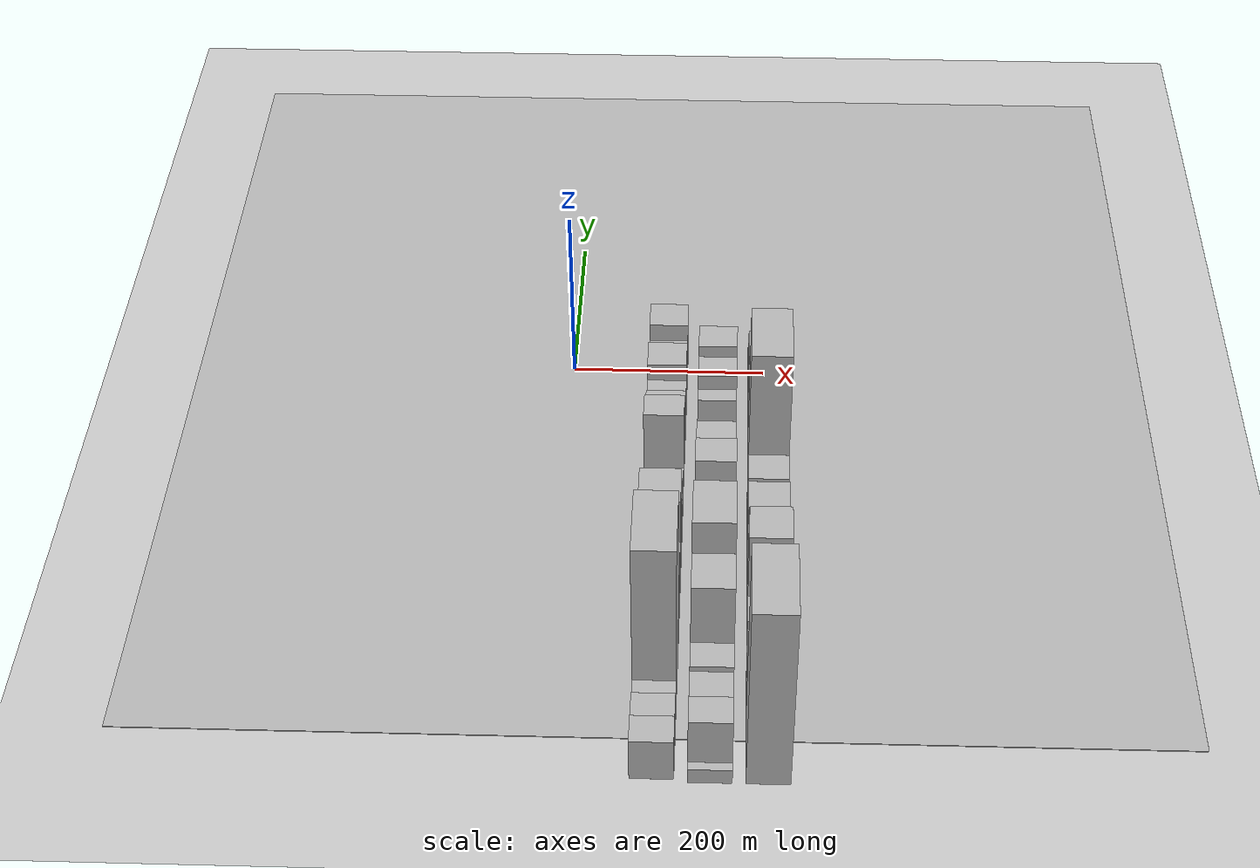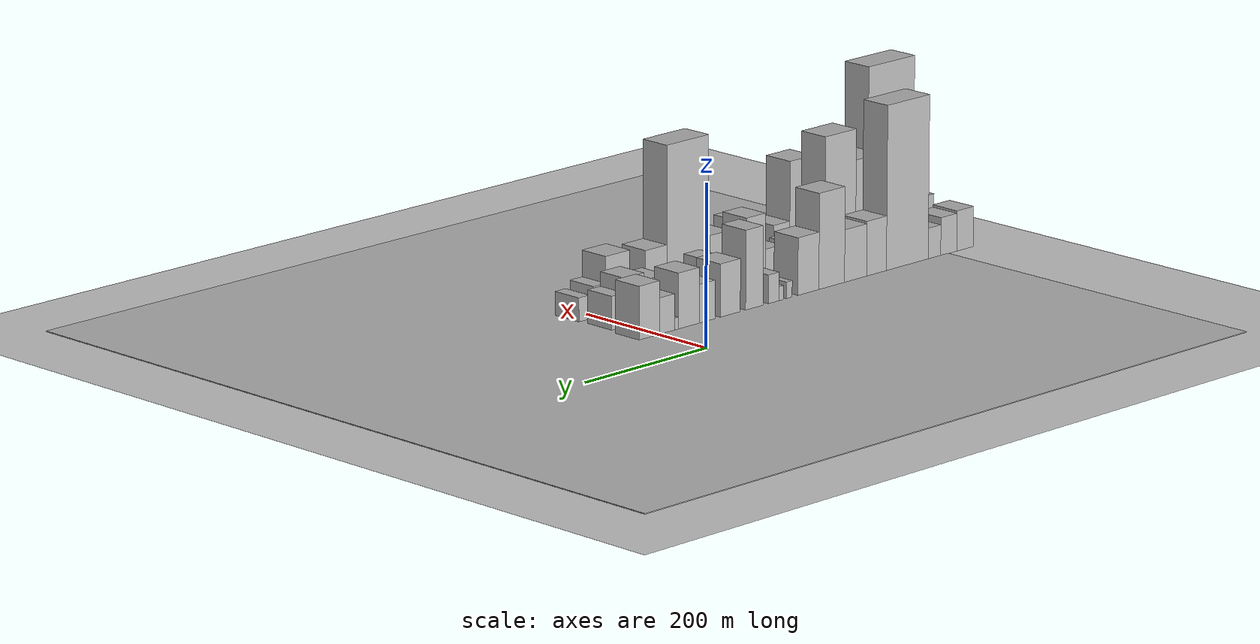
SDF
<sdf version="1.6">
 <world name="default">
  <include><name>ground_plane_1</name><uri>model://HANNAS_ground_plane</uri></include>
  <include>
   <name>ground_plane_2</name>
   <uri>model://HANNAS_ground_plane</uri>
   <pose>100 0 0  0 0 0</pose>
  </include>
  <model name="building_1">
   <static>1</static>
   <pose>100.0000 -530.0485 0 0.000000 0.000000 0.000000</pose>
   <link name="link">
    <pose>0 0 25.50 0 0 0</pose>
    <collision name="collision"><geometry><box><size>40.0000 29.9029 51.0000</size></box></geometry></collision>
    <visual name="visual">
     <cast_shadows>0</cast_shadows>
     <geometry><box><size>40.0000 29.9029 51.0000</size></box></geometry>
     <material>
      <script>
       <uri>model://HANNAS_wall/materials/scripts</uri>
       <uri>model://HANNAS_wall/materials/textures</uri>
       <name>vrc/HANNAS_wall</name>
      </script>
     </material>
    </visual>
   </link>
  </model>
  <model name="building_2">
   <static>1</static>
   <pose>100.0000 -500.7562 0 0.000000 0.000000 0.000000</pose>
   <link name="link">
    <pose>0 0 24.00 0 0 0</pose>
    <collision name="collision"><geometry><box><size>40.0000 28.6818 48.0000</size></box></geometry></collision>
    <visual name="visual">
     <cast_shadows>0</cast_shadows>
     <geometry><box><size>40.0000 28.6818 48.0000</size></box></geometry>
     <material>
      <script>
       <uri>model://HANNAS_wall/materials/scripts</uri>
       <uri>model://HANNAS_wall/materials/textures</uri>
       <name>vrc/HANNAS_wall</name>
      </script>
     </material>
    </visual>
   </link>
  </model>
  <model name="building_3">
   <static>1</static>
   <pose>100.0000 -475.2636 0 0.000000 0.000000 0.000000</pose>
   <link name="link">
    <pose>0 0 19.50 0 0 0</pose>
    <collision name="collision"><geometry><box><size>40.0000 22.3033 39.0000</size></box></geometry></collision>
    <visual name="visual">
     <cast_shadows>0</cast_shadows>
     <geometry><box><size>40.0000 22.3033 39.0000</size></box></geometry>
     <material>
      <script>
       <uri>model://HANNAS_wall/materials/scripts</uri>
       <uri>model://HANNAS_wall/materials/textures</uri>
       <name>vrc/HANNAS_wall</name>
      </script>
     </material>
    </visual>
   </link>
  </model>
  <model name="building_4">
   <static>1</static>
   <pose>100.0000 -427.1443 0 0.000000 0.000000 0.000000</pose>
   <link name="link">
    <pose>0 0 103.50 0 0 0</pose>
    <collision name="collision"><geometry><box><size>40.0000 73.9355 207.0000</size></box></geometry></collision>
    <visual name="visual">
     <cast_shadows>0</cast_shadows>
     <geometry><box><size>40.0000 73.9355 207.0000</size></box></geometry>
     <material>
      <script>
       <uri>model://HANNAS_wall/materials/scripts</uri>
       <uri>model://HANNAS_wall/materials/textures</uri>
       <name>vrc/HANNAS_wall</name>
      </script>
     </material>
    </visual>
   </link>
  </model>
  <model name="building_5">
   <static>1</static>
   <pose>100.0000 -372.8234 0 0.000000 0.000000 0.000000</pose>
   <link name="link">
    <pose>0 0 34.50 0 0 0</pose>
    <collision name="collision"><geometry><box><size>40.0000 34.7063 69.0000</size></box></geometry></collision>
    <visual name="visual">
     <cast_shadows>0</cast_shadows>
     <geometry><box><size>40.0000 34.7063 69.0000</size></box></geometry>
     <material>
      <script>
       <uri>model://HANNAS_wall/materials/scripts</uri>
       <uri>model://HANNAS_wall/materials/textures</uri>
       <name>vrc/HANNAS_wall</name>
      </script>
     </material>
    </visual>
   </link>
  </model>
  <model name="building_6">
   <static>1</static>
   <pose>100.0000 -336.1685 0 0.000000 0.000000 0.000000</pose>
   <link name="link">
    <pose>0 0 33.00 0 0 0</pose>
    <collision name="collision"><geometry><box><size>40.0000 38.6033 66.0000</size></box></geometry></collision>
    <visual name="visual">
     <cast_shadows>0</cast_shadows>
     <geometry><box><size>40.0000 38.6033 66.0000</size></box></geometry>
     <material>
      <script>
       <uri>model://HANNAS_wall/materials/scripts</uri>
       <uri>model://HANNAS_wall/materials/textures</uri>
       <name>vrc/HANNAS_wall</name>
      </script>
     </material>
    </visual>
   </link>
  </model>
  <model name="building_7">
   <static>1</static>
   <pose>100.0000 -294.6221 0 0.000000 0.000000 0.000000</pose>
   <link name="link">
    <pose>0 0 60.00 0 0 0</pose>
    <collision name="collision"><geometry><box><size>40.0000 44.4894 120.0000</size></box></geometry></collision>
    <visual name="visual">
     <cast_shadows>0</cast_shadows>
     <geometry><box><size>40.0000 44.4894 120.0000</size></box></geometry>
     <material>
      <script>
       <uri>model://HANNAS_wall/materials/scripts</uri>
       <uri>model://HANNAS_wall/materials/textures</uri>
       <name>vrc/HANNAS_wall</name>
      </script>
     </material>
    </visual>
   </link>
  </model>
  <model name="building_8">
   <static>1</static>
   <pose>100.0000 -254.2661 0 0.000000 0.000000 0.000000</pose>
   <link name="link">
    <pose>0 0 36.00 0 0 0</pose>
    <collision name="collision"><geometry><box><size>40.0000 36.2226 72.0000</size></box></geometry></collision>
    <visual name="visual">
     <cast_shadows>0</cast_shadows>
     <geometry><box><size>40.0000 36.2226 72.0000</size></box></geometry>
     <material>
      <script>
       <uri>model://HANNAS_wall/materials/scripts</uri>
       <uri>model://HANNAS_wall/materials/textures</uri>
       <name>vrc/HANNAS_wall</name>
      </script>
     </material>
    </visual>
   </link>
  </model>
  <model name="building_9">
   <static>1</static>
   <pose>100.0000 -221.3001 0 0.000000 0.000000 0.000000</pose>
   <link name="link">
    <pose>0 0 10.50 0 0 0</pose>
    <collision name="collision"><geometry><box><size>40.0000 9.7096 21.0000</size></box></geometry></collision>
    <visual name="visual">
     <cast_shadows>0</cast_shadows>
     <geometry><box><size>40.0000 9.7096 21.0000</size></box></geometry>
     <material>
      <script>
       <uri>model://HANNAS_wall/materials/scripts</uri>
       <uri>model://HANNAS_wall/materials/textures</uri>
       <name>vrc/HANNAS_wall</name>
      </script>
     </material>
    </visual>
   </link>
  </model>
  <model name="building_10">
   <static>1</static>
   <pose>100.0000 -207.6392 0 0.000000 0.000000 0.000000</pose>
   <link name="link">
    <pose>0 0 9.00 0 0 0</pose>
    <collision name="collision"><geometry><box><size>40.0000 7.6121 18.0000</size></box></geometry></collision>
    <visual name="visual">
     <cast_shadows>0</cast_shadows>
     <geometry><box><size>40.0000 7.6121 18.0000</size></box></geometry>
     <material>
      <script>
       <uri>model://HANNAS_wall/materials/scripts</uri>
       <uri>model://HANNAS_wall/materials/textures</uri>
       <name>vrc/HANNAS_wall</name>
      </script>
     </material>
    </visual>
   </link>
  </model>
  <model name="building_11">
   <static>1</static>
   <pose>100.0000 -194.6576 0 0.000000 0.000000 0.000000</pose>
   <link name="link">
    <pose>0 0 18.00 0 0 0</pose>
    <collision name="collision"><geometry><box><size>40.0000 18.3511 36.0000</size></box></geometry></collision>
    <visual name="visual">
     <cast_shadows>0</cast_shadows>
     <geometry><box><size>40.0000 18.3511 36.0000</size></box></geometry>
     <material>
      <script>
       <uri>model://HANNAS_wall/materials/scripts</uri>
       <uri>model://HANNAS_wall/materials/textures</uri>
       <name>vrc/HANNAS_wall</name>
      </script>
     </material>
    </visual>
   </link>
  </model>
  <model name="building_12">
   <static>1</static>
   <pose>100.0000 -161.5539 0 0.000000 0.000000 0.000000</pose>
   <link name="link">
    <pose>0 0 49.50 0 0 0</pose>
    <collision name="collision"><geometry><box><size>40.0000 29.8562 99.0000</size></box></geometry></collision>
    <visual name="visual">
     <cast_shadows>0</cast_shadows>
     <geometry><box><size>40.0000 29.8562 99.0000</size></box></geometry>
     <material>
      <script>
       <uri>model://HANNAS_wall/materials/scripts</uri>
       <uri>model://HANNAS_wall/materials/textures</uri>
       <name>vrc/HANNAS_wall</name>
      </script>
     </material>
    </visual>
   </link>
  </model>
  <model name="building_13">
   <static>1</static>
   <pose>100.0000 -120.6561 0 0.000000 0.000000 0.000000</pose>
   <link name="link">
    <pose>0 0 33.00 0 0 0</pose>
    <collision name="collision"><geometry><box><size>40.0000 33.9394 66.0000</size></box></geometry></collision>
    <visual name="visual">
     <cast_shadows>0</cast_shadows>
     <geometry><box><size>40.0000 33.9394 66.0000</size></box></geometry>
     <material>
      <script>
       <uri>model://HANNAS_wall/materials/scripts</uri>
       <uri>model://HANNAS_wall/materials/textures</uri>
       <name>vrc/HANNAS_wall</name>
      </script>
     </material>
    </visual>
   </link>
  </model>
  <model name="building_14">
   <static>1</static>
   <pose>100.0000 -81.5072 0 0.000000 0.000000 0.000000</pose>
   <link name="link">
    <pose>0 0 24.00 0 0 0</pose>
    <collision name="collision"><geometry><box><size>40.0000 26.3584 48.0000</size></box></geometry></collision>
    <visual name="visual">
     <cast_shadows>0</cast_shadows>
     <geometry><box><size>40.0000 26.3584 48.0000</size></box></geometry>
     <material>
      <script>
       <uri>model://HANNAS_wall/materials/scripts</uri>
       <uri>model://HANNAS_wall/materials/textures</uri>
       <name>vrc/HANNAS_wall</name>
      </script>
     </material>
    </visual>
   </link>
  </model>
  <model name="building_15">
   <static>1</static>
   <pose>100.0000 -50.8605 0 0.000000 0.000000 0.000000</pose>
   <link name="link">
    <pose>0 0 34.50 0 0 0</pose>
    <collision name="collision"><geometry><box><size>40.0000 34.9350 69.0000</size></box></geometry></collision>
    <visual name="visual">
     <cast_shadows>0</cast_shadows>
     <geometry><box><size>40.0000 34.9350 69.0000</size></box></geometry>
     <material>
      <script>
       <uri>model://HANNAS_wall/materials/scripts</uri>
       <uri>model://HANNAS_wall/materials/textures</uri>
       <name>vrc/HANNAS_wall</name>
      </script>
     </material>
    </visual>
   </link>
  </model>
  <model name="building_16">
   <static>1</static>
   <pose>100.0000 -30.2823 0 0.000000 0.000000 0.000000</pose>
   <link name="link">
    <pose>0 0 7.50 0 0 0</pose>
    <collision name="collision"><geometry><box><size>40.0000 6.2215 15.0000</size></box></geometry></collision>
    <visual name="visual">
     <cast_shadows>0</cast_shadows>
     <geometry><box><size>40.0000 6.2215 15.0000</size></box></geometry>
     <material>
      <script>
       <uri>model://HANNAS_wall/materials/scripts</uri>
       <uri>model://HANNAS_wall/materials/textures</uri>
       <name>vrc/HANNAS_wall</name>
      </script>
     </material>
    </visual>
   </link>
  </model>
  <model name="building_17">
   <static>1</static>
   <pose>100.0000 -14.8061 0 0.000000 0.000000 0.000000</pose>
   <link name="link">
    <pose>0 0 22.50 0 0 0</pose>
    <collision name="collision"><geometry><box><size>40.0000 24.7308 45.0000</size></box></geometry></collision>
    <visual name="visual">
     <cast_shadows>0</cast_shadows>
     <geometry><box><size>40.0000 24.7308 45.0000</size></box></geometry>
     <material>
      <script>
       <uri>model://HANNAS_wall/materials/scripts</uri>
       <uri>model://HANNAS_wall/materials/textures</uri>
       <name>vrc/HANNAS_wall</name>
      </script>
     </material>
    </visual>
   </link>
  </model>
  <model name="building_18">
   <static>1</static>
   <pose>100.0000 14.7597 0 0.000000 0.000000 0.000000</pose>
   <link name="link">
    <pose>0 0 33.00 0 0 0</pose>
    <collision name="collision"><geometry><box><size>40.0000 34.4009 66.0000</size></box></geometry></collision>
    <visual name="visual">
     <cast_shadows>0</cast_shadows>
     <geometry><box><size>40.0000 34.4009 66.0000</size></box></geometry>
     <material>
      <script>
       <uri>model://HANNAS_wall/materials/scripts</uri>
       <uri>model://HANNAS_wall/materials/textures</uri>
       <name>vrc/HANNAS_wall</name>
      </script>
     </material>
    </visual>
   </link>
  </model>
  <model name="building_36">
   <static>1</static>
   <pose>152.0000 -543.7004 0 0.000000 0.000000 0.000000</pose>
   <link name="link">
    <pose>0 0 9.00 0 0 0</pose>
    <collision name="collision"><geometry><box><size>40.0000 8.5993 18.0000</size></box></geometry></collision>
    <visual name="visual">
     <cast_shadows>0</cast_shadows>
     <geometry><box><size>40.0000 8.5993 18.0000</size></box></geometry>
     <material>
      <script>
       <uri>model://HANNAS_wall/materials/scripts</uri>
       <uri>model://HANNAS_wall/materials/textures</uri>
       <name>vrc/HANNAS_wall</name>
      </script>
     </material>
    </visual>
   </link>
  </model>
  <model name="building_37">
   <static>1</static>
   <pose>152.0000 -514.3517 0 0.000000 0.000000 0.000000</pose>
   <link name="link">
    <pose>0 0 30.00 0 0 0</pose>
    <collision name="collision"><geometry><box><size>40.0000 30.0981 60.0000</size></box></geometry></collision>
    <visual name="visual">
     <cast_shadows>0</cast_shadows>
     <geometry><box><size>40.0000 30.0981 60.0000</size></box></geometry>
     <material>
      <script>
       <uri>model://HANNAS_wall/materials/scripts</uri>
       <uri>model://HANNAS_wall/materials/textures</uri>
       <name>vrc/HANNAS_wall</name>
      </script>
     </material>
    </visual>
   </link>
  </model>
  <model name="building_38">
   <static>1</static>
   <pose>152.0000 -479.7937 0 0.000000 0.000000 0.000000</pose>
   <link name="link">
    <pose>0 0 27.00 0 0 0</pose>
    <collision name="collision"><geometry><box><size>40.0000 29.0178 54.0000</size></box></geometry></collision>
    <visual name="visual">
     <cast_shadows>0</cast_shadows>
     <geometry><box><size>40.0000 29.0178 54.0000</size></box></geometry>
     <material>
      <script>
       <uri>model://HANNAS_wall/materials/scripts</uri>
       <uri>model://HANNAS_wall/materials/textures</uri>
       <name>vrc/HANNAS_wall</name>
      </script>
     </material>
    </visual>
   </link>
  </model>
  <model name="building_39">
   <static>1</static>
   <pose>152.0000 -447.8820 0 0.000000 0.000000 0.000000</pose>
   <link name="link">
    <pose>0 0 28.50 0 0 0</pose>
    <collision name="collision"><geometry><box><size>40.0000 28.8056 57.0000</size></box></geometry></collision>
    <visual name="visual">
     <cast_shadows>0</cast_shadows>
     <geometry><box><size>40.0000 28.8056 57.0000</size></box></geometry>
     <material>
      <script>
       <uri>model://HANNAS_wall/materials/scripts</uri>
       <uri>model://HANNAS_wall/materials/textures</uri>
       <name>vrc/HANNAS_wall</name>
      </script>
     </material>
    </visual>
   </link>
  </model>
  <model name="building_40">
   <static>1</static>
   <pose>152.0000 -411.9997 0 0.000000 0.000000 0.000000</pose>
   <link name="link">
    <pose>0 0 64.50 0 0 0</pose>
    <collision name="collision"><geometry><box><size>40.0000 42.9589 129.0000</size></box></geometry></collision>
    <visual name="visual">
     <cast_shadows>0</cast_shadows>
     <geometry><box><size>40.0000 42.9589 129.0000</size></box></geometry>
     <material>
      <script>
       <uri>model://HANNAS_wall/materials/scripts</uri>
       <uri>model://HANNAS_wall/materials/textures</uri>
       <name>vrc/HANNAS_wall</name>
      </script>
     </material>
    </visual>
   </link>
  </model>
  <model name="building_41">
   <static>1</static>
   <pose>152.0000 -363.5714 0 0.000000 0.000000 0.000000</pose>
   <link name="link">
    <pose>0 0 84.00 0 0 0</pose>
    <collision name="collision"><geometry><box><size>40.0000 53.8978 168.0000</size></box></geometry></collision>
    <visual name="visual">
     <cast_shadows>0</cast_shadows>
     <geometry><box><size>40.0000 53.8978 168.0000</size></box></geometry>
     <material>
      <script>
       <uri>model://HANNAS_wall/materials/scripts</uri>
       <uri>model://HANNAS_wall/materials/textures</uri>
       <name>vrc/HANNAS_wall</name>
      </script>
     </material>
    </visual>
   </link>
  </model>
  <model name="building_42">
   <static>1</static>
   <pose>152.0000 -315.9194 0 0.000000 0.000000 0.000000</pose>
   <link name="link">
    <pose>0 0 18.00 0 0 0</pose>
    <collision name="collision"><geometry><box><size>40.0000 21.4063 36.0000</size></box></geometry></collision>
    <visual name="visual">
     <cast_shadows>0</cast_shadows>
     <geometry><box><size>40.0000 21.4063 36.0000</size></box></geometry>
     <material>
      <script>
       <uri>model://HANNAS_wall/materials/scripts</uri>
       <uri>model://HANNAS_wall/materials/textures</uri>
       <name>vrc/HANNAS_wall</name>
      </script>
     </material>
    </visual>
   </link>
  </model>
  <model name="building_43">
   <static>1</static>
   <pose>152.0000 -293.4636 0 0.000000 0.000000 0.000000</pose>
   <link name="link">
    <pose>0 0 22.50 0 0 0</pose>
    <collision name="collision"><geometry><box><size>40.0000 23.5053 45.0000</size></box></geometry></collision>
    <visual name="visual">
     <cast_shadows>0</cast_shadows>
     <geometry><box><size>40.0000 23.5053 45.0000</size></box></geometry>
     <material>
      <script>
       <uri>model://HANNAS_wall/materials/scripts</uri>
       <uri>model://HANNAS_wall/materials/textures</uri>
       <name>vrc/HANNAS_wall</name>
      </script>
     </material>
    </visual>
   </link>
  </model>
  <model name="building_44">
   <static>1</static>
   <pose>152.0000 -278.1289 0 0.000000 0.000000 0.000000</pose>
   <link name="link">
    <pose>0 0 7.50 0 0 0</pose>
    <collision name="collision"><geometry><box><size>40.0000 7.1641 15.0000</size></box></geometry></collision>
    <visual name="visual">
     <cast_shadows>0</cast_shadows>
     <geometry><box><size>40.0000 7.1641 15.0000</size></box></geometry>
     <material>
      <script>
       <uri>model://HANNAS_wall/materials/scripts</uri>
       <uri>model://HANNAS_wall/materials/textures</uri>
       <name>vrc/HANNAS_wall</name>
      </script>
     </material>
    </visual>
   </link>
  </model>
  <model name="building_45">
   <static>1</static>
   <pose>152.0000 -268.0411 0 0.000000 0.000000 0.000000</pose>
   <link name="link">
    <pose>0 0 13.50 0 0 0</pose>
    <collision name="collision"><geometry><box><size>40.0000 13.0114 27.0000</size></box></geometry></collision>
    <visual name="visual">
     <cast_shadows>0</cast_shadows>
     <geometry><box><size>40.0000 13.0114 27.0000</size></box></geometry>
     <material>
      <script>
       <uri>model://HANNAS_wall/materials/scripts</uri>
       <uri>model://HANNAS_wall/materials/textures</uri>
       <name>vrc/HANNAS_wall</name>
      </script>
     </material>
    </visual>
   </link>
  </model>
  <model name="building_46">
   <static>1</static>
   <pose>152.0000 -247.6543 0 0.000000 0.000000 0.000000</pose>
   <link name="link">
    <pose>0 0 24.00 0 0 0</pose>
    <collision name="collision"><geometry><box><size>40.0000 27.7624 48.0000</size></box></geometry></collision>
    <visual name="visual">
     <cast_shadows>0</cast_shadows>
     <geometry><box><size>40.0000 27.7624 48.0000</size></box></geometry>
     <material>
      <script>
       <uri>model://HANNAS_wall/materials/scripts</uri>
       <uri>model://HANNAS_wall/materials/textures</uri>
       <name>vrc/HANNAS_wall</name>
      </script>
     </material>
    </visual>
   </link>
  </model>
  <model name="building_47">
   <static>1</static>
   <pose>152.0000 -217.5060 0 0.000000 0.000000 0.000000</pose>
   <link name="link">
    <pose>0 0 46.50 0 0 0</pose>
    <collision name="collision"><geometry><box><size>40.0000 32.5342 93.0000</size></box></geometry></collision>
    <visual name="visual">
     <cast_shadows>0</cast_shadows>
     <geometry><box><size>40.0000 32.5342 93.0000</size></box></geometry>
     <material>
      <script>
       <uri>model://HANNAS_wall/materials/scripts</uri>
       <uri>model://HANNAS_wall/materials/textures</uri>
       <name>vrc/HANNAS_wall</name>
      </script>
     </material>
    </visual>
   </link>
  </model>
  <model name="building_48">
   <static>1</static>
   <pose>152.0000 -191.4395 0 0.000000 0.000000 0.000000</pose>
   <link name="link">
    <pose>0 0 16.50 0 0 0</pose>
    <collision name="collision"><geometry><box><size>40.0000 19.5988 33.0000</size></box></geometry></collision>
    <visual name="visual">
     <cast_shadows>0</cast_shadows>
     <geometry><box><size>40.0000 19.5988 33.0000</size></box></geometry>
     <material>
      <script>
       <uri>model://HANNAS_wall/materials/scripts</uri>
       <uri>model://HANNAS_wall/materials/textures</uri>
       <name>vrc/HANNAS_wall</name>
      </script>
     </material>
    </visual>
   </link>
  </model>
  <model name="building_49">
   <static>1</static>
   <pose>152.0000 -171.7727 0 0.000000 0.000000 0.000000</pose>
   <link name="link">
    <pose>0 0 18.00 0 0 0</pose>
    <collision name="collision"><geometry><box><size>40.0000 19.7348 36.0000</size></box></geometry></collision>
    <visual name="visual">
     <cast_shadows>0</cast_shadows>
     <geometry><box><size>40.0000 19.7348 36.0000</size></box></geometry>
     <material>
      <script>
       <uri>model://HANNAS_wall/materials/scripts</uri>
       <uri>model://HANNAS_wall/materials/textures</uri>
       <name>vrc/HANNAS_wall</name>
      </script>
     </material>
    </visual>
   </link>
  </model>
  <model name="building_50">
   <static>1</static>
   <pose>152.0000 -148.2957 0 0.000000 0.000000 0.000000</pose>
   <link name="link">
    <pose>0 0 27.00 0 0 0</pose>
    <collision name="collision"><geometry><box><size>40.0000 27.2191 54.0000</size></box></geometry></collision>
    <visual name="visual">
     <cast_shadows>0</cast_shadows>
     <geometry><box><size>40.0000 27.2191 54.0000</size></box></geometry>
     <material>
      <script>
       <uri>model://HANNAS_wall/materials/scripts</uri>
       <uri>model://HANNAS_wall/materials/textures</uri>
       <name>vrc/HANNAS_wall</name>
      </script>
     </material>
    </visual>
   </link>
  </model>
  <model name="building_51">
   <static>1</static>
   <pose>152.0000 -72.7577 0 0.000000 0.000000 0.000000</pose>
   <link name="link">
    <pose>0 0 16.50 0 0 0</pose>
    <collision name="collision"><geometry><box><size>40.0000 17.2856 33.0000</size></box></geometry></collision>
    <visual name="visual">
     <cast_shadows>0</cast_shadows>
     <geometry><box><size>40.0000 17.2856 33.0000</size></box></geometry>
     <material>
      <script>
       <uri>model://HANNAS_wall/materials/scripts</uri>
       <uri>model://HANNAS_wall/materials/textures</uri>
       <name>vrc/HANNAS_wall</name>
      </script>
     </material>
    </visual>
   </link>
  </model>
  <model name="building_52">
   <static>1</static>
   <pose>152.0000 -48.9809 0 0.000000 0.000000 0.000000</pose>
   <link name="link">
    <pose>0 0 25.50 0 0 0</pose>
    <collision name="collision"><geometry><box><size>40.0000 30.2680 51.0000</size></box></geometry></collision>
    <visual name="visual">
     <cast_shadows>0</cast_shadows>
     <geometry><box><size>40.0000 30.2680 51.0000</size></box></geometry>
     <material>
      <script>
       <uri>model://HANNAS_wall/materials/scripts</uri>
       <uri>model://HANNAS_wall/materials/textures</uri>
       <name>vrc/HANNAS_wall</name>
      </script>
     </material>
    </visual>
   </link>
  </model>
  <model name="building_53">
   <static>1</static>
   <pose>152.0000 -11.5261 0 0.000000 0.000000 0.000000</pose>
   <link name="link">
    <pose>0 0 30.00 0 0 0</pose>
    <collision name="collision"><geometry><box><size>40.0000 32.6414 60.0000</size></box></geometry></collision>
    <visual name="visual">
     <cast_shadows>0</cast_shadows>
     <geometry><box><size>40.0000 32.6414 60.0000</size></box></geometry>
     <material>
      <script>
       <uri>model://HANNAS_wall/materials/scripts</uri>
       <uri>model://HANNAS_wall/materials/textures</uri>
       <name>vrc/HANNAS_wall</name>
      </script>
     </material>
    </visual>
   </link>
  </model>
  <model name="building_54">
   <static>1</static>
   <pose>152.0000 15.3104 0 0.000000 0.000000 0.000000</pose>
   <link name="link">
    <pose>0 0 21.00 0 0 0</pose>
    <collision name="collision"><geometry><box><size>40.0000 21.0316 42.0000</size></box></geometry></collision>
    <visual name="visual">
     <cast_shadows>0</cast_shadows>
     <geometry><box><size>40.0000 21.0316 42.0000</size></box></geometry>
     <material>
      <script>
       <uri>model://HANNAS_wall/materials/scripts</uri>
       <uri>model://HANNAS_wall/materials/textures</uri>
       <name>vrc/HANNAS_wall</name>
      </script>
     </material>
    </visual>
   </link>
  </model>
  <model name="building_73">
   <static>1</static>
   <pose>204.0000 -507.2561 0 0.000000 0.000000 0.000000</pose>
   <link name="link">
    <pose>0 0 111.00 0 0 0</pose>
    <collision name="collision"><geometry><box><size>40.0000 81.4878 222.0000</size></box></geometry></collision>
    <visual name="visual">
     <cast_shadows>0</cast_shadows>
     <geometry><box><size>40.0000 81.4878 222.0000</size></box></geometry>
     <material>
      <script>
       <uri>model://HANNAS_wall/materials/scripts</uri>
       <uri>model://HANNAS_wall/materials/textures</uri>
       <name>vrc/HANNAS_wall</name>
      </script>
     </material>
    </visual>
   </link>
  </model>
  <model name="building_74">
   <static>1</static>
   <pose>204.0000 -446.7447 0 0.000000 0.000000 0.000000</pose>
   <link name="link">
    <pose>0 0 34.50 0 0 0</pose>
    <collision name="collision"><geometry><box><size>40.0000 39.5350 69.0000</size></box></geometry></collision>
    <visual name="visual">
     <cast_shadows>0</cast_shadows>
     <geometry><box><size>40.0000 39.5350 69.0000</size></box></geometry>
     <material>
      <script>
       <uri>model://HANNAS_wall/materials/scripts</uri>
       <uri>model://HANNAS_wall/materials/textures</uri>
       <name>vrc/HANNAS_wall</name>
      </script>
     </material>
    </visual>
   </link>
  </model>
  <model name="building_75">
   <static>1</static>
   <pose>204.0000 -416.8272 0 0.000000 0.000000 0.000000</pose>
   <link name="link">
    <pose>0 0 18.00 0 0 0</pose>
    <collision name="collision"><geometry><box><size>40.0000 20.3001 36.0000</size></box></geometry></collision>
    <visual name="visual">
     <cast_shadows>0</cast_shadows>
     <geometry><box><size>40.0000 20.3001 36.0000</size></box></geometry>
     <material>
      <script>
       <uri>model://HANNAS_wall/materials/scripts</uri>
       <uri>model://HANNAS_wall/materials/textures</uri>
       <name>vrc/HANNAS_wall</name>
      </script>
     </material>
    </visual>
   </link>
  </model>
  <model name="building_76">
   <static>1</static>
   <pose>204.0000 -390.8703 0 0.000000 0.000000 0.000000</pose>
   <link name="link">
    <pose>0 0 28.50 0 0 0</pose>
    <collision name="collision"><geometry><box><size>40.0000 31.6136 57.0000</size></box></geometry></collision>
    <visual name="visual">
     <cast_shadows>0</cast_shadows>
     <geometry><box><size>40.0000 31.6136 57.0000</size></box></geometry>
     <material>
      <script>
       <uri>model://HANNAS_wall/materials/scripts</uri>
       <uri>model://HANNAS_wall/materials/textures</uri>
       <name>vrc/HANNAS_wall</name>
      </script>
     </material>
    </visual>
   </link>
  </model>
  <model name="building_77">
   <static>1</static>
   <pose>204.0000 -349.6418 0 0.000000 0.000000 0.000000</pose>
   <link name="link">
    <pose>0 0 64.50 0 0 0</pose>
    <collision name="collision"><geometry><box><size>40.0000 40.8434 129.0000</size></box></geometry></collision>
    <visual name="visual">
     <cast_shadows>0</cast_shadows>
     <geometry><box><size>40.0000 40.8434 129.0000</size></box></geometry>
     <material>
      <script>
       <uri>model://HANNAS_wall/materials/scripts</uri>
       <uri>model://HANNAS_wall/materials/textures</uri>
       <name>vrc/HANNAS_wall</name>
      </script>
     </material>
    </visual>
   </link>
  </model>
  <model name="building_78">
   <static>1</static>
   <pose>204.0000 -315.1188 0 0.000000 0.000000 0.000000</pose>
   <link name="link">
    <pose>0 0 27.00 0 0 0</pose>
    <collision name="collision"><geometry><box><size>40.0000 28.2027 54.0000</size></box></geometry></collision>
    <visual name="visual">
     <cast_shadows>0</cast_shadows>
     <geometry><box><size>40.0000 28.2027 54.0000</size></box></geometry>
     <material>
      <script>
       <uri>model://HANNAS_wall/materials/scripts</uri>
       <uri>model://HANNAS_wall/materials/textures</uri>
       <name>vrc/HANNAS_wall</name>
      </script>
     </material>
    </visual>
   </link>
  </model>
  <model name="building_79">
   <static>1</static>
   <pose>204.0000 -287.3202 0 0.000000 0.000000 0.000000</pose>
   <link name="link">
    <pose>0 0 13.50 0 0 0</pose>
    <collision name="collision"><geometry><box><size>40.0000 13.3946 27.0000</size></box></geometry></collision>
    <visual name="visual">
     <cast_shadows>0</cast_shadows>
     <geometry><box><size>40.0000 13.3946 27.0000</size></box></geometry>
     <material>
      <script>
       <uri>model://HANNAS_wall/materials/scripts</uri>
       <uri>model://HANNAS_wall/materials/textures</uri>
       <name>vrc/HANNAS_wall</name>
      </script>
     </material>
    </visual>
   </link>
  </model>
  <model name="building_80">
   <static>1</static>
   <pose>204.0000 -258.1647 0 0.000000 0.000000 0.000000</pose>
   <link name="link">
    <pose>0 0 36.00 0 0 0</pose>
    <collision name="collision"><geometry><box><size>40.0000 38.9164 72.0000</size></box></geometry></collision>
    <visual name="visual">
     <cast_shadows>0</cast_shadows>
     <geometry><box><size>40.0000 38.9164 72.0000</size></box></geometry>
     <material>
      <script>
       <uri>model://HANNAS_wall/materials/scripts</uri>
       <uri>model://HANNAS_wall/materials/textures</uri>
       <name>vrc/HANNAS_wall</name>
      </script>
     </material>
    </visual>
   </link>
  </model>
  <model name="building_81">
   <static>1</static>
   <pose>204.0000 -232.2177 0 0.000000 0.000000 0.000000</pose>
   <link name="link">
    <pose>0 0 13.50 0 0 0</pose>
    <collision name="collision"><geometry><box><size>40.0000 12.9776 27.0000</size></box></geometry></collision>
    <visual name="visual">
     <cast_shadows>0</cast_shadows>
     <geometry><box><size>40.0000 12.9776 27.0000</size></box></geometry>
     <material>
      <script>
       <uri>model://HANNAS_wall/materials/scripts</uri>
       <uri>model://HANNAS_wall/materials/textures</uri>
       <name>vrc/HANNAS_wall</name>
      </script>
     </material>
    </visual>
   </link>
  </model>
  <model name="building_82">
   <static>1</static>
   <pose>204.0000 -208.8524 0 0.000000 0.000000 0.000000</pose>
   <link name="link">
    <pose>0 0 31.50 0 0 0</pose>
    <collision name="collision"><geometry><box><size>40.0000 33.7529 63.0000</size></box></geometry></collision>
    <visual name="visual">
     <cast_shadows>0</cast_shadows>
     <geometry><box><size>40.0000 33.7529 63.0000</size></box></geometry>
     <material>
      <script>
       <uri>model://HANNAS_wall/materials/scripts</uri>
       <uri>model://HANNAS_wall/materials/textures</uri>
       <name>vrc/HANNAS_wall</name>
      </script>
     </material>
    </visual>
   </link>
  </model>
  <model name="building_83">
   <static>1</static>
   <pose>204.0000 -153.5234 0 0.000000 0.000000 0.000000</pose>
   <link name="link">
    <pose>0 0 94.50 0 0 0</pose>
    <collision name="collision"><geometry><box><size>40.0000 70.9052 189.0000</size></box></geometry></collision>
    <visual name="visual">
     <cast_shadows>0</cast_shadows>
     <geometry><box><size>40.0000 70.9052 189.0000</size></box></geometry>
     <material>
      <script>
       <uri>model://HANNAS_wall/materials/scripts</uri>
       <uri>model://HANNAS_wall/materials/textures</uri>
       <name>vrc/HANNAS_wall</name>
      </script>
     </material>
    </visual>
   </link>
  </model>
  <model name="building_84">
   <static>1</static>
   <pose>204.0000 -100.3104 0 0.000000 0.000000 0.000000</pose>
   <link name="link">
    <pose>0 0 33.00 0 0 0</pose>
    <collision name="collision"><geometry><box><size>40.0000 35.5207 66.0000</size></box></geometry></collision>
    <visual name="visual">
     <cast_shadows>0</cast_shadows>
     <geometry><box><size>40.0000 35.5207 66.0000</size></box></geometry>
     <material>
      <script>
       <uri>model://HANNAS_wall/materials/scripts</uri>
       <uri>model://HANNAS_wall/materials/textures</uri>
       <name>vrc/HANNAS_wall</name>
      </script>
     </material>
    </visual>
   </link>
  </model>
  <model name="building_85">
   <static>1</static>
   <pose>204.0000 -74.1930 0 0.000000 0.000000 0.000000</pose>
   <link name="link">
    <pose>0 0 15.00 0 0 0</pose>
    <collision name="collision"><geometry><box><size>40.0000 16.7143 30.0000</size></box></geometry></collision>
    <visual name="visual">
     <cast_shadows>0</cast_shadows>
     <geometry><box><size>40.0000 16.7143 30.0000</size></box></geometry>
     <material>
      <script>
       <uri>model://HANNAS_wall/materials/scripts</uri>
       <uri>model://HANNAS_wall/materials/textures</uri>
       <name>vrc/HANNAS_wall</name>
      </script>
     </material>
    </visual>
   </link>
  </model>
  <model name="building_86">
   <static>1</static>
   <pose>204.0000 -35.8660 0 0.000000 0.000000 0.000000</pose>
   <link name="link">
    <pose>0 0 36.00 0 0 0</pose>
    <collision name="collision"><geometry><box><size>40.0000 39.9396 72.0000</size></box></geometry></collision>
    <visual name="visual">
     <cast_shadows>0</cast_shadows>
     <geometry><box><size>40.0000 39.9396 72.0000</size></box></geometry>
     <material>
      <script>
       <uri>model://HANNAS_wall/materials/scripts</uri>
       <uri>model://HANNAS_wall/materials/textures</uri>
       <name>vrc/HANNAS_wall</name>
      </script>
     </material>
    </visual>
   </link>
  </model>
  <model name="building_87">
   <static>1</static>
   <pose>204.0000 -5.7195 0 0.000000 0.000000 0.000000</pose>
   <link name="link">
    <pose>0 0 19.50 0 0 0</pose>
    <collision name="collision"><geometry><box><size>40.0000 20.3535 39.0000</size></box></geometry></collision>
    <visual name="visual">
     <cast_shadows>0</cast_shadows>
     <geometry><box><size>40.0000 20.3535 39.0000</size></box></geometry>
     <material>
      <script>
       <uri>model://HANNAS_wall/materials/scripts</uri>
       <uri>model://HANNAS_wall/materials/textures</uri>
       <name>vrc/HANNAS_wall</name>
      </script>
     </material>
    </visual>
   </link>
  </model>
  <model name="building_88">
   <static>1</static>
   <pose>204.0000 8.1179 0 0.000000 0.000000 0.000000</pose>
   <link name="link">
    <pose>0 0 9.00 0 0 0</pose>
    <collision name="collision"><geometry><box><size>40.0000 7.3213 18.0000</size></box></geometry></collision>
    <visual name="visual">
     <cast_shadows>0</cast_shadows>
     <geometry><box><size>40.0000 7.3213 18.0000</size></box></geometry>
     <material>
      <script>
       <uri>model://HANNAS_wall/materials/scripts</uri>
       <uri>model://HANNAS_wall/materials/textures</uri>
       <name>vrc/HANNAS_wall</name>
      </script>
     </material>
    </visual>
   </link>
  </model>
  <model name="building_89">
   <static>1</static>
   <pose>204.0000 20.3497 0 0.000000 0.000000 0.000000</pose>
   <link name="link">
    <pose>0 0 15.00 0 0 0</pose>
    <collision name="collision"><geometry><box><size>40.0000 17.1423 30.0000</size></box></geometry></collision>
    <visual name="visual">
     <cast_shadows>0</cast_shadows>
     <geometry><box><size>40.0000 17.1423 30.0000</size></box></geometry>
     <material>
      <script>
       <uri>model://HANNAS_wall/materials/scripts</uri>
       <uri>model://HANNAS_wall/materials/textures</uri>
       <name>vrc/HANNAS_wall</name>
      </script>
     </material>
    </visual>
   </link>
  </model>
 </world>
</sdf>
